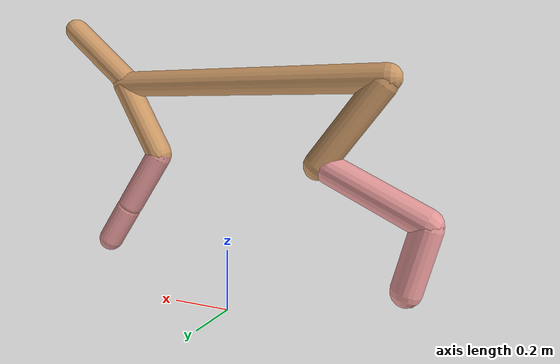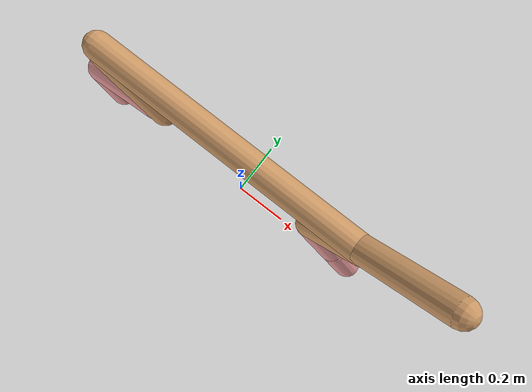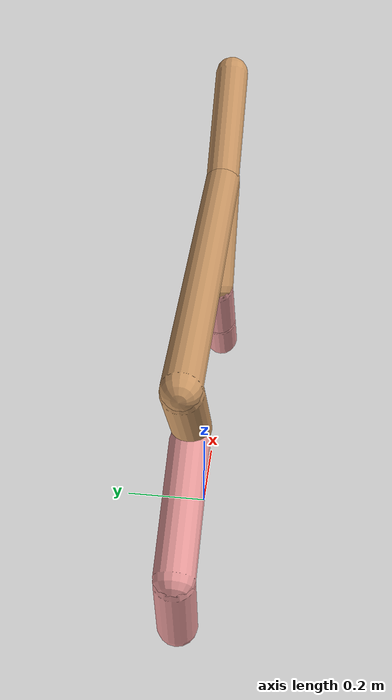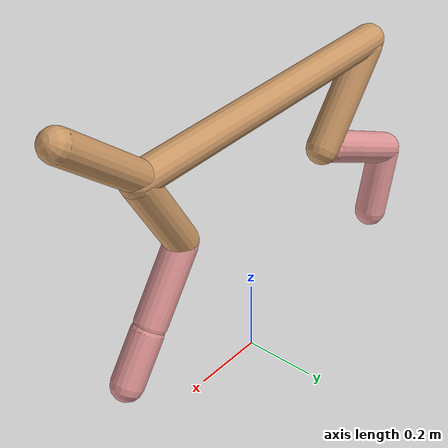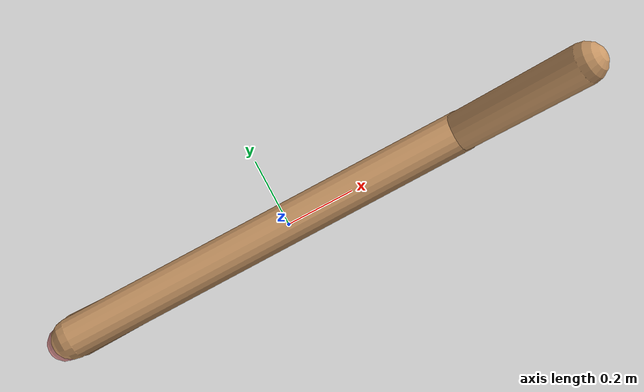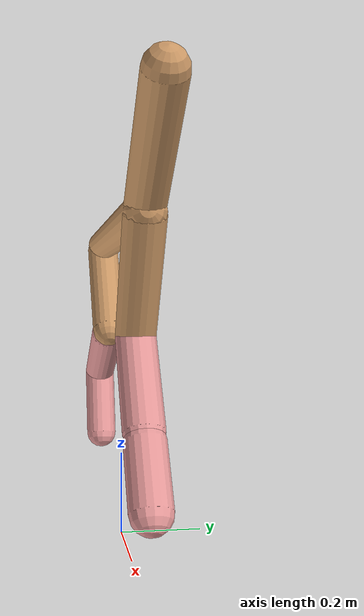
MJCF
<mujoco model="cheetah">
  <compiler angle="radian" coordinate="local" inertiafromgeom="true" settotalmass="14" />
  <default>
    <joint armature=".1" damping=".01" limited="true" solimplimit="0 .8 .03" solreflimit=".02 1" stiffness="8" />
    <geom conaffinity="0" condim="3" contype="1" friction="0.8 .1 .1" rgba="0.8 0.6 .4 1" solimp="0.0 0.8 0.01" solref="0.02 1" />
    <motor ctrllimited="true" ctrlrange="-1 1" />
  </default>
  <size nstack="300000" nuser_geom="1" />
  <option gravity="0 0 -9.81" timestep="0.01" />
  <worldbody>
    <body name="torso" pos="0.0 0.0 0.744933175757309">
      <joint armature="0" axis="1 0 0" damping="0" limited="false" name="ignorex" pos="0 0 0" stiffness="0" type="slide" />
      <joint armature="0" axis="0 0 1" damping="0" limited="false" name="ignorez" pos="0 0 0" stiffness="0" type="slide" />
      <joint armature="0" axis="0 1 0" damping="0" limited="false" name="ignorey" pos="0 0 0" stiffness="0" type="hinge" />
      <geom fromto="-0.5 0.0 0.0 0.40154712139559834 0.0 0.0" name="torso" size="0.04304137999152982" type="capsule" />
      <geom axisangle="0 1 0 .87" name="head" pos="0.5015471213955983 0.0 0.1" size="0.04149443725946106 0.15" type="capsule" />

      <body name="bthigh" pos="-.5 0 0">
        <joint axis="0 1 0" damping="6" name="bthigh" pos="0 0 0" range="-.52 1.05" stiffness="240" type="hinge" />
        <geom axisangle="0 1 0 -3.8" name="bthigh" pos="0.10336648721429269 0.0 -0.1343764333785805" size="0.045582374982391115 0.15052144956339814" type="capsule" />
        <body name="bshin" pos="0.16673297442858537 0.0 -0.25875286675716097">
          <joint axis="0 1 0" damping="4.5" name="bshin" pos="0 0 0" range="-.785 .785" stiffness="180" type="hinge" />
          <geom axisangle="0 1 0 -2.03" name="bshin" pos="-0.14510882892059096 0.0 -0.07255441446029548" rgba="0.9 0.6 0.6 1" size="0.045582374982391115 0.1557118443759291" type="capsule" />
          <body name="bfoot" pos="-0.2902176578411819 0.0 -0.14510882892059096">
            <joint axis="0 1 0" damping="3" name="bfoot" pos="0 0 0" range="-.4 .785" stiffness="120" type="hinge" />
            <geom axisangle="0 1 0 -.27" name="bfoot" pos="0.031057610967081307 0.0 -0.1004196087935629" rgba="0.9 0.6 0.6 1" size="0.045582374982391115 0.09757942247558225" type="capsule" />
            <inertial mass="10" />
          </body>
        </body>
      </body>
      <body name="fthigh" pos="0.40154712139559834 0.0 0.0">
        <joint axis="0 1 0" damping="4.5" name="fthigh" pos="0 0 0" range="-1.5 0.8" stiffness="180" type="hinge" />
        <geom axisangle="0 1 0 .52" name="fthigh" pos="-0.07089611747634973 0.0 -0.12153620138802809" size="0.043480576010574395 0.13477846597830795" type="capsule" />
        <body name="fshin" pos="-0.14179223495269946 0.0 -0.24307240277605618">
          <joint axis="0 1 0" damping="3" name="fshin" pos="0 0 0" range="-1.2 1.1" stiffness="120" type="hinge" />
          <geom axisangle="0 1 0 -.6" name="fshin" pos="0.06582988837027884 0.0 -0.09114907620500146" rgba="0.9 0.6 0.6 1" size="0.043480576010574395 0.10741742401278678" type="capsule" />
          <body name="ffoot" pos="0.13165977674055768 0.0 -0.1822981524100029">
            <joint axis="0 1 0" damping="1.5" name="ffoot" pos="0 0 0" range="-3.1 -0.3" stiffness="60" type="hinge" />
            <geom axisangle="0 1 0 -.6" name="ffoot" pos="0.04550616788350674 0.0 -0.07078737226323271" rgba="0.9 0.6 0.6 1" size="0.043480576010574395 0.07093603472542524" type="capsule" />
            <inertial mass="10" />
          </body>
        </body>
      </body>
    </body>
  </worldbody>
  <actuator>
    <motor gear="120" joint="bthigh" name="bthigh" />
    <motor gear="90" joint="bshin" name="bshin" />
    <motor gear="60" joint="bfoot" name="bfoot" />
    <motor gear="120" joint="fthigh" name="fthigh" />
    <motor gear="60" joint="fshin" name="fshin" />
    <motor gear="30" joint="ffoot" name="ffoot" />
  </actuator>
</mujoco>
